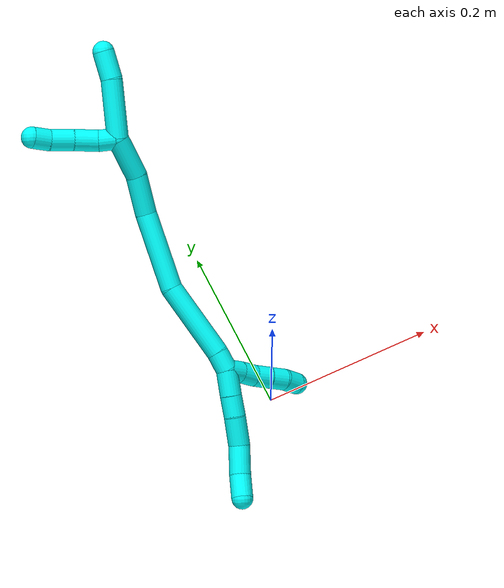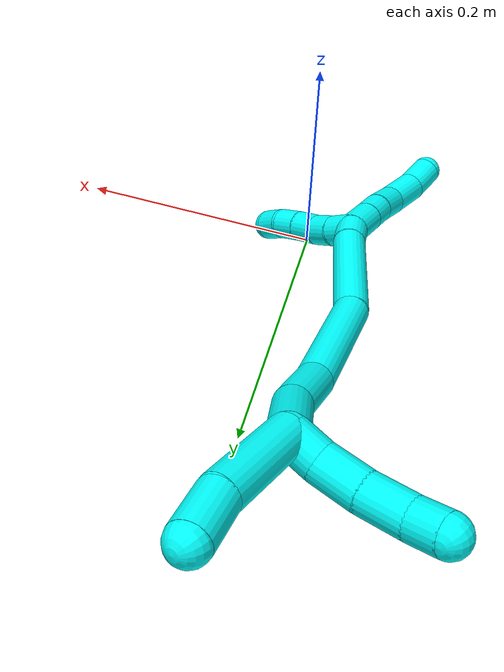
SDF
<sdf version="1.7">
 <world name="default">
  <model name="3">
   <static>0</static>
   <link name="3">
    <collision name="collision-cylinder-e_1_2_8">
     <pose>-0.000328 -0.001591 -0.014697 3.03376 -0.022193 -0.405601</pose>
     <geometry><cylinder><radius>0.0125</radius><length>0.029572</length></cylinder></geometry>
     <surface>
      <friction><ode><mu>1.16</mu><mu2>1.16</mu2><slip1>0</slip1><slip2>0</slip2></ode></friction>
      <contact><ode><kp>1e+06</kp><kd>1</kd><max_vel>0</max_vel><min_depth>0.001</min_depth></ode></contact>
     </surface>
    </collision>
    <visual name="visual-cylinder-e_1_2_8">
     <pose>-0.000328 -0.001591 -0.014697 3.03376 -0.022193 -0.405601</pose>
     <geometry><cylinder><radius>0.0125</radius><length>0.029572</length></cylinder></geometry>
     <material><ambient>0.003922 1 0.996078 1</ambient></material>
    </visual>
    <collision name="collision-cylinder-e_2_8_9">
     <pose>-0.000599 -0.004884 -0.041396 3.00075 0.004739 0.067162</pose>
     <geometry><cylinder><radius>0.0125</radius><length>0.024246</length></cylinder></geometry>
     <surface>
      <friction><ode><mu>1.16</mu><mu2>1.16</mu2><slip1>0</slip1><slip2>0</slip2></ode></friction>
      <contact><ode><kp>1e+06</kp><kd>1</kd><max_vel>0</max_vel><min_depth>0.001</min_depth></ode></contact>
     </surface>
    </collision>
    <visual name="visual-cylinder-e_2_8_9">
     <pose>-0.000599 -0.004884 -0.041396 3.00075 0.004739 0.067162</pose>
     <geometry><cylinder><radius>0.0125</radius><length>0.024246</length></cylinder></geometry>
     <material><ambient>0.003922 1 0.996078 1</ambient></material>
    </visual>
    <collision name="collision-cylinder-e_3_9_10">
     <pose>0.001238 -0.008702 -0.070191 3.01619 0.104759 1.39152</pose>
     <geometry><cylinder><radius>0.0125</radius><length>0.034037</length></cylinder></geometry>
     <surface>
      <friction><ode><mu>1.16</mu><mu2>1.16</mu2><slip1>0</slip1><slip2>0</slip2></ode></friction>
      <contact><ode><kp>1e+06</kp><kd>1</kd><max_vel>0</max_vel><min_depth>0.001</min_depth></ode></contact>
     </surface>
    </collision>
    <visual name="visual-cylinder-e_3_9_10">
     <pose>0.001238 -0.008702 -0.070191 3.01619 0.104759 1.39152</pose>
     <geometry><cylinder><radius>0.0125</radius><length>0.034037</length></cylinder></geometry>
     <material><ambient>0.003922 1 0.996078 1</ambient></material>
    </visual>
    <collision name="collision-cylinder-e_4_10_11">
     <pose>0.000408 -0.010017 -0.104098 -3.09478 -0.151168 2.54194</pose>
     <geometry><cylinder><radius>0.0125</radius><length>0.034661</length></cylinder></geometry>
     <surface>
      <friction><ode><mu>1.16</mu><mu2>1.16</mu2><slip1>0</slip1><slip2>0</slip2></ode></friction>
      <contact><ode><kp>1e+06</kp><kd>1</kd><max_vel>0</max_vel><min_depth>0.001</min_depth></ode></contact>
     </surface>
    </collision>
    <visual name="visual-cylinder-e_4_10_11">
     <pose>0.000408 -0.010017 -0.104098 -3.09478 -0.151168 2.54194</pose>
     <geometry><cylinder><radius>0.0125</radius><length>0.034661</length></cylinder></geometry>
     <material><ambient>0.003922 1 0.996078 1</ambient></material>
    </visual>
    <collision name="collision-cylinder-e_5_11_6">
     <pose>-0.006914 -0.008938 -0.134117 -3.12008 -0.350021 3.02007</pose>
     <geometry><cylinder><radius>0.0125</radius><length>0.027484</length></cylinder></geometry>
     <surface>
      <friction><ode><mu>1.16</mu><mu2>1.16</mu2><slip1>0</slip1><slip2>0</slip2></ode></friction>
      <contact><ode><kp>1e+06</kp><kd>1</kd><max_vel>0</max_vel><min_depth>0.001</min_depth></ode></contact>
     </surface>
    </collision>
    <visual name="visual-cylinder-e_5_11_6">
     <pose>-0.006914 -0.008938 -0.134117 -3.12008 -0.350021 3.02007</pose>
     <geometry><cylinder><radius>0.0125</radius><length>0.027484</length></cylinder></geometry>
     <material><ambient>0.003922 1 0.996078 1</ambient></material>
    </visual>
    <collision name="collision-cylinder-e_1_2_12">
     <pose>0.004784 -0.008608 -0.001735 1.76969 0.498833 0.603371</pose>
     <geometry><cylinder><radius>0.0125</radius><length>0.02</length></cylinder></geometry>
     <surface>
      <friction><ode><mu>1.16</mu><mu2>1.16</mu2><slip1>0</slip1><slip2>0</slip2></ode></friction>
      <contact><ode><kp>1e+06</kp><kd>1</kd><max_vel>0</max_vel><min_depth>0.001</min_depth></ode></contact>
     </surface>
    </collision>
    <visual name="visual-cylinder-e_1_2_12">
     <pose>0.004784 -0.008608 -0.001735 1.76969 0.498833 0.603371</pose>
     <geometry><cylinder><radius>0.0125</radius><length>0.02</length></cylinder></geometry>
     <material><ambient>0.003922 1 0.996078 1</ambient></material>
    </visual>
    <collision name="collision-cylinder-e_2_12_13">
     <pose>0.013558 -0.025966 -0.006215 1.8748 0.410382 0.552344</pose>
     <geometry><cylinder><radius>0.0125</radius><length>0.02</length></cylinder></geometry>
     <surface>
      <friction><ode><mu>1.16</mu><mu2>1.16</mu2><slip1>0</slip1><slip2>0</slip2></ode></friction>
      <contact><ode><kp>1e+06</kp><kd>1</kd><max_vel>0</max_vel><min_depth>0.001</min_depth></ode></contact>
     </surface>
    </collision>
    <visual name="visual-cylinder-e_2_12_13">
     <pose>0.013558 -0.025966 -0.006215 1.8748 0.410382 0.552344</pose>
     <geometry><cylinder><radius>0.0125</radius><length>0.02</length></cylinder></geometry>
     <material><ambient>0.003922 1 0.996078 1</ambient></material>
    </visual>
    <collision name="collision-cylinder-e_3_13_14">
     <pose>0.020136 -0.044205 -0.010758 1.75803 0.26186 0.315308</pose>
     <geometry><cylinder><radius>0.0125</radius><length>0.02</length></cylinder></geometry>
     <surface>
      <friction><ode><mu>1.16</mu><mu2>1.16</mu2><slip1>0</slip1><slip2>0</slip2></ode></friction>
      <contact><ode><kp>1e+06</kp><kd>1</kd><max_vel>0</max_vel><min_depth>0.001</min_depth></ode></contact>
     </surface>
    </collision>
    <visual name="visual-cylinder-e_3_13_14">
     <pose>0.020136 -0.044205 -0.010758 1.75803 0.26186 0.315308</pose>
     <geometry><cylinder><radius>0.0125</radius><length>0.02</length></cylinder></geometry>
     <material><ambient>0.003922 1 0.996078 1</ambient></material>
    </visual>
    <collision name="collision-cylinder-e_4_14_15">
     <pose>0.02587 -0.063025 -0.014308 1.7565 0.319944 0.384178</pose>
     <geometry><cylinder><radius>0.0125</radius><length>0.02</length></cylinder></geometry>
     <surface>
      <friction><ode><mu>1.16</mu><mu2>1.16</mu2><slip1>0</slip1><slip2>0</slip2></ode></friction>
      <contact><ode><kp>1e+06</kp><kd>1</kd><max_vel>0</max_vel><min_depth>0.001</min_depth></ode></contact>
     </surface>
    </collision>
    <visual name="visual-cylinder-e_4_14_15">
     <pose>0.02587 -0.063025 -0.014308 1.7565 0.319944 0.384178</pose>
     <geometry><cylinder><radius>0.0125</radius><length>0.02</length></cylinder></geometry>
     <material><ambient>0.003922 1 0.996078 1</ambient></material>
    </visual>
    <collision name="collision-cylinder-e_5_15_5">
     <pose>0.03385 -0.080577 -0.019062 1.9207 0.504644 0.706174</pose>
     <geometry><cylinder><radius>0.0125</radius><length>0.02</length></cylinder></geometry>
     <surface>
      <friction><ode><mu>1.16</mu><mu2>1.16</mu2><slip1>0</slip1><slip2>0</slip2></ode></friction>
      <contact><ode><kp>1e+06</kp><kd>1</kd><max_vel>0</max_vel><min_depth>0.001</min_depth></ode></contact>
     </surface>
    </collision>
    <visual name="visual-cylinder-e_5_15_5">
     <pose>0.03385 -0.080577 -0.019062 1.9207 0.504644 0.706174</pose>
     <geometry><cylinder><radius>0.0125</radius><length>0.02</length></cylinder></geometry>
     <material><ambient>0.003922 1 0.996078 1</ambient></material>
    </visual>
    <collision name="collision-cylinder-e_1_2_16">
     <pose>0.00069 0.00483 0.010362 -0.436166 0.060258 -0.013358</pose>
     <geometry><cylinder><radius>0.0125</radius><length>0.022906</length></cylinder></geometry>
     <surface>
      <friction><ode><mu>1.16</mu><mu2>1.16</mu2><slip1>0</slip1><slip2>0</slip2></ode></friction>
      <contact><ode><kp>1e+06</kp><kd>1</kd><max_vel>0</max_vel><min_depth>0.001</min_depth></ode></contact>
     </surface>
    </collision>
    <visual name="visual-cylinder-e_1_2_16">
     <pose>0.00069 0.00483 0.010362 -0.436166 0.060258 -0.013358</pose>
     <geometry><cylinder><radius>0.0125</radius><length>0.022906</length></cylinder></geometry>
     <material><ambient>0.003922 1 0.996078 1</ambient></material>
    </visual>
    <collision name="collision-cylinder-e_2_16_17">
     <pose>0.006194 0.033739 0.058672 -0.565426 0.106719 -0.031028</pose>
     <geometry><cylinder><radius>0.0125</radius><length>0.090399</length></cylinder></geometry>
     <surface>
      <friction><ode><mu>1.16</mu><mu2>1.16</mu2><slip1>0</slip1><slip2>0</slip2></ode></friction>
      <contact><ode><kp>1e+06</kp><kd>1</kd><max_vel>0</max_vel><min_depth>0.001</min_depth></ode></contact>
     </surface>
    </collision>
    <visual name="visual-cylinder-e_2_16_17">
     <pose>0.006194 0.033739 0.058672 -0.565426 0.106719 -0.031028</pose>
     <geometry><cylinder><radius>0.0125</radius><length>0.090399</length></cylinder></geometry>
     <material><ambient>0.003922 1 0.996078 1</ambient></material>
    </visual>
    <collision name="collision-cylinder-e_3_17_18">
     <pose>0.013304 0.070129 0.140113 -0.275829 0.050734 -0.007043</pose>
     <geometry><cylinder><radius>0.0125</radius><length>0.090522</length></cylinder></geometry>
     <surface>
      <friction><ode><mu>1.16</mu><mu2>1.16</mu2><slip1>0</slip1><slip2>0</slip2></ode></friction>
      <contact><ode><kp>1e+06</kp><kd>1</kd><max_vel>0</max_vel><min_depth>0.001</min_depth></ode></contact>
     </surface>
    </collision>
    <visual name="visual-cylinder-e_3_17_18">
     <pose>0.013304 0.070129 0.140113 -0.275829 0.050734 -0.007043</pose>
     <geometry><cylinder><radius>0.0125</radius><length>0.090522</length></cylinder></geometry>
     <material><ambient>0.003922 1 0.996078 1</ambient></material>
    </visual>
    <collision name="collision-cylinder-e_4_18_19">
     <pose>0.010672 0.087769 0.205791 -0.235787 -0.212677 0.025284</pose>
     <geometry><cylinder><radius>0.0125</radius><length>0.046682</length></cylinder></geometry>
     <surface>
      <friction><ode><mu>1.16</mu><mu2>1.16</mu2><slip1>0</slip1><slip2>0</slip2></ode></friction>
      <contact><ode><kp>1e+06</kp><kd>1</kd><max_vel>0</max_vel><min_depth>0.001</min_depth></ode></contact>
     </surface>
    </collision>
    <visual name="visual-cylinder-e_4_18_19">
     <pose>0.010672 0.087769 0.205791 -0.235787 -0.212677 0.025284</pose>
     <geometry><cylinder><radius>0.0125</radius><length>0.046682</length></cylinder></geometry>
     <material><ambient>0.003922 1 0.996078 1</ambient></material>
    </visual>
    <collision name="collision-cylinder-e_5_19_1">
     <pose>-0.001731 0.103915 0.248938 -0.476328 -0.306938 0.075071</pose>
     <geometry><cylinder><radius>0.0125</radius><length>0.04949</length></cylinder></geometry>
     <surface>
      <friction><ode><mu>1.16</mu><mu2>1.16</mu2><slip1>0</slip1><slip2>0</slip2></ode></friction>
      <contact><ode><kp>1e+06</kp><kd>1</kd><max_vel>0</max_vel><min_depth>0.001</min_depth></ode></contact>
     </surface>
    </collision>
    <visual name="visual-cylinder-e_5_19_1">
     <pose>-0.001731 0.103915 0.248938 -0.476328 -0.306938 0.075071</pose>
     <geometry><cylinder><radius>0.0125</radius><length>0.04949</length></cylinder></geometry>
     <material><ambient>0.003922 1 0.996078 1</ambient></material>
    </visual>
    <collision name="collision-cylinder-e_1_1_20">
     <pose>-0.010514 0.116784 0.303597 -0.060875 -0.038689 0.001178</pose>
     <geometry><cylinder><radius>0.0125</radius><length>0.067568</length></cylinder></geometry>
     <surface>
      <friction><ode><mu>1.16</mu><mu2>1.16</mu2><slip1>0</slip1><slip2>0</slip2></ode></friction>
      <contact><ode><kp>1e+06</kp><kd>1</kd><max_vel>0</max_vel><min_depth>0.001</min_depth></ode></contact>
     </surface>
    </collision>
    <visual name="visual-cylinder-e_1_1_20">
     <pose>-0.010514 0.116784 0.303597 -0.060875 -0.038689 0.001178</pose>
     <geometry><cylinder><radius>0.0125</radius><length>0.067568</length></cylinder></geometry>
     <material><ambient>0.003922 1 0.996078 1</ambient></material>
    </visual>
    <collision name="collision-cylinder-e_2_20_4">
     <pose>-0.010802 0.122585 0.353038 -0.233628 0.062891 -0.007383</pose>
     <geometry><cylinder><radius>0.0125</radius><length>0.032432</length></cylinder></geometry>
     <surface>
      <friction><ode><mu>1.16</mu><mu2>1.16</mu2><slip1>0</slip1><slip2>0</slip2></ode></friction>
      <contact><ode><kp>1e+06</kp><kd>1</kd><max_vel>0</max_vel><min_depth>0.001</min_depth></ode></contact>
     </surface>
    </collision>
    <visual name="visual-cylinder-e_2_20_4">
     <pose>-0.010802 0.122585 0.353038 -0.233628 0.062891 -0.007383</pose>
     <geometry><cylinder><radius>0.0125</radius><length>0.032432</length></cylinder></geometry>
     <material><ambient>0.003922 1 0.996078 1</ambient></material>
    </visual>
    <collision name="collision-cylinder-e_1_1_21">
     <pose>-0.005521 0.125026 0.269212 -1.63766 0.343163 -0.366399</pose>
     <geometry><cylinder><radius>0.0125</radius><length>0.021915</length></cylinder></geometry>
     <surface>
      <friction><ode><mu>1.16</mu><mu2>1.16</mu2><slip1>0</slip1><slip2>0</slip2></ode></friction>
      <contact><ode><kp>1e+06</kp><kd>1</kd><max_vel>0</max_vel><min_depth>0.001</min_depth></ode></contact>
     </surface>
    </collision>
    <visual name="visual-cylinder-e_1_1_21">
     <pose>-0.005521 0.125026 0.269212 -1.63766 0.343163 -0.366399</pose>
     <geometry><cylinder><radius>0.0125</radius><length>0.021915</length></cylinder></geometry>
     <material><ambient>0.003922 1 0.996078 1</ambient></material>
    </visual>
    <collision name="collision-cylinder-e_2_21_22">
     <pose>-0.001311 0.149764 0.269664 -1.49193 0.036092 -0.033353</pose>
     <geometry><cylinder><radius>0.0125</radius><length>0.028993</length></cylinder></geometry>
     <surface>
      <friction><ode><mu>1.16</mu><mu2>1.16</mu2><slip1>0</slip1><slip2>0</slip2></ode></friction>
      <contact><ode><kp>1e+06</kp><kd>1</kd><max_vel>0</max_vel><min_depth>0.001</min_depth></ode></contact>
     </surface>
    </collision>
    <visual name="visual-cylinder-e_2_21_22">
     <pose>-0.001311 0.149764 0.269664 -1.49193 0.036092 -0.033353</pose>
     <geometry><cylinder><radius>0.0125</radius><length>0.028993</length></cylinder></geometry>
     <material><ambient>0.003922 1 0.996078 1</ambient></material>
    </visual>
    <collision name="collision-cylinder-e_3_22_23">
     <pose>-0.001613 0.178287 0.271286 -1.53664 -0.058519 0.056555</pose>
     <geometry><cylinder><radius>0.0125</radius><length>0.028226</length></cylinder></geometry>
     <surface>
      <friction><ode><mu>1.16</mu><mu2>1.16</mu2><slip1>0</slip1><slip2>0</slip2></ode></friction>
      <contact><ode><kp>1e+06</kp><kd>1</kd><max_vel>0</max_vel><min_depth>0.001</min_depth></ode></contact>
     </surface>
    </collision>
    <visual name="visual-cylinder-e_3_22_23">
     <pose>-0.001613 0.178287 0.271286 -1.53664 -0.058519 0.056555</pose>
     <geometry><cylinder><radius>0.0125</radius><length>0.028226</length></cylinder></geometry>
     <material><ambient>0.003922 1 0.996078 1</ambient></material>
    </visual>
    <collision name="collision-cylinder-e_4_23_3">
     <pose>-0.005043 0.202314 0.273535 -1.39493 -0.252308 0.211759</pose>
     <geometry><cylinder><radius>0.0125</radius><length>0.020865</length></cylinder></geometry>
     <surface>
      <friction><ode><mu>1.16</mu><mu2>1.16</mu2><slip1>0</slip1><slip2>0</slip2></ode></friction>
      <contact><ode><kp>1e+06</kp><kd>1</kd><max_vel>0</max_vel><min_depth>0.001</min_depth></ode></contact>
     </surface>
    </collision>
    <visual name="visual-cylinder-e_4_23_3">
     <pose>-0.005043 0.202314 0.273535 -1.39493 -0.252308 0.211759</pose>
     <geometry><cylinder><radius>0.0125</radius><length>0.020865</length></cylinder></geometry>
     <material><ambient>0.003922 1 0.996078 1</ambient></material>
    </visual>
    <collision name="collision-sphere-3">
     <pose>-0.007647 0.212261 0.275302 0 -0 0</pose>
     <geometry><sphere><radius>0.0125</radius></sphere></geometry>
     <surface>
      <friction><ode><mu>1.16</mu><mu2>1.16</mu2><slip1>0</slip1><slip2>0</slip2></ode></friction>
      <contact><ode><kp>1e+06</kp><kd>1</kd><max_vel>0</max_vel><min_depth>0.001</min_depth></ode></contact>
     </surface>
    </collision>
    <visual name="visual-sphere-3">
     <pose>-0.007647 0.212261 0.275302 0 -0 0</pose>
     <geometry><sphere><radius>0.0125</radius></sphere></geometry>
     <material><ambient>0.003922 1 0.996078 1</ambient></material>
    </visual>
    <collision name="collision-sphere-23">
     <pose>-0.002439 0.192368 0.271767 0 -0 0</pose>
     <geometry><sphere><radius>0.0125</radius></sphere></geometry>
     <surface>
      <friction><ode><mu>1.16</mu><mu2>1.16</mu2><slip1>0</slip1><slip2>0</slip2></ode></friction>
      <contact><ode><kp>1e+06</kp><kd>1</kd><max_vel>0</max_vel><min_depth>0.001</min_depth></ode></contact>
     </surface>
    </collision>
    <visual name="visual-sphere-23">
     <pose>-0.002439 0.192368 0.271767 0 -0 0</pose>
     <geometry><sphere><radius>0.0125</radius></sphere></geometry>
     <material><ambient>0.003922 1 0.996078 1</ambient></material>
    </visual>
    <collision name="collision-sphere-22">
     <pose>-0.000788 0.164206 0.270805 0 -0 0</pose>
     <geometry><sphere><radius>0.0125</radius></sphere></geometry>
     <surface>
      <friction><ode><mu>1.16</mu><mu2>1.16</mu2><slip1>0</slip1><slip2>0</slip2></ode></friction>
      <contact><ode><kp>1e+06</kp><kd>1</kd><max_vel>0</max_vel><min_depth>0.001</min_depth></ode></contact>
     </surface>
    </collision>
    <visual name="visual-sphere-22">
     <pose>-0.000788 0.164206 0.270805 0 -0 0</pose>
     <geometry><sphere><radius>0.0125</radius></sphere></geometry>
     <material><ambient>0.003922 1 0.996078 1</ambient></material>
    </visual>
    <collision name="collision-sphere-21">
     <pose>-0.001834 0.135322 0.268522 0 -0 0</pose>
     <geometry><sphere><radius>0.0125</radius></sphere></geometry>
     <surface>
      <friction><ode><mu>1.16</mu><mu2>1.16</mu2><slip1>0</slip1><slip2>0</slip2></ode></friction>
      <contact><ode><kp>1e+06</kp><kd>1</kd><max_vel>0</max_vel><min_depth>0.001</min_depth></ode></contact>
     </surface>
    </collision>
    <visual name="visual-sphere-21">
     <pose>-0.001834 0.135322 0.268522 0 -0 0</pose>
     <geometry><sphere><radius>0.0125</radius></sphere></geometry>
     <material><ambient>0.003922 1 0.996078 1</ambient></material>
    </visual>
    <collision name="collision-sphere-4">
     <pose>-0.009783 0.126332 0.368782 0 -0 0</pose>
     <geometry><sphere><radius>0.0125</radius></sphere></geometry>
     <surface>
      <friction><ode><mu>1.16</mu><mu2>1.16</mu2><slip1>0</slip1><slip2>0</slip2></ode></friction>
      <contact><ode><kp>1e+06</kp><kd>1</kd><max_vel>0</max_vel><min_depth>0.001</min_depth></ode></contact>
     </surface>
    </collision>
    <visual name="visual-sphere-4">
     <pose>-0.009783 0.126332 0.368782 0 -0 0</pose>
     <geometry><sphere><radius>0.0125</radius></sphere></geometry>
     <material><ambient>0.003922 1 0.996078 1</ambient></material>
    </visual>
    <collision name="collision-sphere-20">
     <pose>-0.011821 0.118838 0.337293 0 -0 0</pose>
     <geometry><sphere><radius>0.0125</radius></sphere></geometry>
     <surface>
      <friction><ode><mu>1.16</mu><mu2>1.16</mu2><slip1>0</slip1><slip2>0</slip2></ode></friction>
      <contact><ode><kp>1e+06</kp><kd>1</kd><max_vel>0</max_vel><min_depth>0.001</min_depth></ode></contact>
     </surface>
    </collision>
    <visual name="visual-sphere-20">
     <pose>-0.011821 0.118838 0.337293 0 -0 0</pose>
     <geometry><sphere><radius>0.0125</radius></sphere></geometry>
     <material><ambient>0.003922 1 0.996078 1</ambient></material>
    </visual>
    <collision name="collision-sphere-6">
     <pose>-0.011627 -0.00866 -0.147023 0 -0 0</pose>
     <geometry><sphere><radius>0.0125</radius></sphere></geometry>
     <surface>
      <friction><ode><mu>1.16</mu><mu2>1.16</mu2><slip1>0</slip1><slip2>0</slip2></ode></friction>
      <contact><ode><kp>1e+06</kp><kd>1</kd><max_vel>0</max_vel><min_depth>0.001</min_depth></ode></contact>
     </surface>
    </collision>
    <visual name="visual-sphere-6">
     <pose>-0.011627 -0.00866 -0.147023 0 -0 0</pose>
     <geometry><sphere><radius>0.0125</radius></sphere></geometry>
     <material><ambient>0.003922 1 0.996078 1</ambient></material>
    </visual>
    <collision name="collision-sphere-11">
     <pose>-0.002202 -0.009216 -0.121212 0 -0 0</pose>
     <geometry><sphere><radius>0.0125</radius></sphere></geometry>
     <surface>
      <friction><ode><mu>1.16</mu><mu2>1.16</mu2><slip1>0</slip1><slip2>0</slip2></ode></friction>
      <contact><ode><kp>1e+06</kp><kd>1</kd><max_vel>0</max_vel><min_depth>0.001</min_depth></ode></contact>
     </surface>
    </collision>
    <visual name="visual-sphere-11">
     <pose>-0.002202 -0.009216 -0.121212 0 -0 0</pose>
     <geometry><sphere><radius>0.0125</radius></sphere></geometry>
     <material><ambient>0.003922 1 0.996078 1</ambient></material>
    </visual>
    <collision name="collision-sphere-10">
     <pose>0.003018 -0.010819 -0.086984 0 -0 0</pose>
     <geometry><sphere><radius>0.0125</radius></sphere></geometry>
     <surface>
      <friction><ode><mu>1.16</mu><mu2>1.16</mu2><slip1>0</slip1><slip2>0</slip2></ode></friction>
      <contact><ode><kp>1e+06</kp><kd>1</kd><max_vel>0</max_vel><min_depth>0.001</min_depth></ode></contact>
     </surface>
    </collision>
    <visual name="visual-sphere-10">
     <pose>0.003018 -0.010819 -0.086984 0 -0 0</pose>
     <geometry><sphere><radius>0.0125</radius></sphere></geometry>
     <material><ambient>0.003922 1 0.996078 1</ambient></material>
    </visual>
    <collision name="collision-sphere-9">
     <pose>-0.000541 -0.006585 -0.053399 0 -0 0</pose>
     <geometry><sphere><radius>0.0125</radius></sphere></geometry>
     <surface>
      <friction><ode><mu>1.16</mu><mu2>1.16</mu2><slip1>0</slip1><slip2>0</slip2></ode></friction>
      <contact><ode><kp>1e+06</kp><kd>1</kd><max_vel>0</max_vel><min_depth>0.001</min_depth></ode></contact>
     </surface>
    </collision>
    <visual name="visual-sphere-9">
     <pose>-0.000541 -0.006585 -0.053399 0 -0 0</pose>
     <geometry><sphere><radius>0.0125</radius></sphere></geometry>
     <material><ambient>0.003922 1 0.996078 1</ambient></material>
    </visual>
    <collision name="collision-sphere-2">
     <geometry><sphere><radius>0.0125</radius></sphere></geometry>
     <surface>
      <friction><ode><mu>1.16</mu><mu2>1.16</mu2><slip1>0</slip1><slip2>0</slip2></ode></friction>
      <contact><ode><kp>1e+06</kp><kd>1</kd><max_vel>0</max_vel><min_depth>0.001</min_depth></ode></contact>
     </surface>
    </collision>
    <visual name="visual-sphere-2">
     <geometry><sphere><radius>0.0125</radius></sphere></geometry>
     <material><ambient>0.003922 1 0.996078 1</ambient></material>
    </visual>
    <collision name="collision-sphere-19">
     <pose>0.005745 0.093099 0.227975 0 -0 0</pose>
     <geometry><sphere><radius>0.0125</radius></sphere></geometry>
     <surface>
      <friction><ode><mu>1.16</mu><mu2>1.16</mu2><slip1>0</slip1><slip2>0</slip2></ode></friction>
      <contact><ode><kp>1e+06</kp><kd>1</kd><max_vel>0</max_vel><min_depth>0.001</min_depth></ode></contact>
     </surface>
    </collision>
    <visual name="visual-sphere-19">
     <pose>0.005745 0.093099 0.227975 0 -0 0</pose>
     <geometry><sphere><radius>0.0125</radius></sphere></geometry>
     <material><ambient>0.003922 1 0.996078 1</ambient></material>
    </visual>
    <collision name="collision-sphere-8">
     <pose>-0.000656 -0.003182 -0.029393 0 -0 0</pose>
     <geometry><sphere><radius>0.0125</radius></sphere></geometry>
     <surface>
      <friction><ode><mu>1.16</mu><mu2>1.16</mu2><slip1>0</slip1><slip2>0</slip2></ode></friction>
      <contact><ode><kp>1e+06</kp><kd>1</kd><max_vel>0</max_vel><min_depth>0.001</min_depth></ode></contact>
     </surface>
    </collision>
    <visual name="visual-sphere-8">
     <pose>-0.000656 -0.003182 -0.029393 0 -0 0</pose>
     <geometry><sphere><radius>0.0125</radius></sphere></geometry>
     <material><ambient>0.003922 1 0.996078 1</ambient></material>
    </visual>
    <collision name="collision-sphere-12">
     <pose>0.009568 -0.017217 -0.00347 0 -0 0</pose>
     <geometry><sphere><radius>0.0125</radius></sphere></geometry>
     <surface>
      <friction><ode><mu>1.16</mu><mu2>1.16</mu2><slip1>0</slip1><slip2>0</slip2></ode></friction>
      <contact><ode><kp>1e+06</kp><kd>1</kd><max_vel>0</max_vel><min_depth>0.001</min_depth></ode></contact>
     </surface>
    </collision>
    <visual name="visual-sphere-12">
     <pose>0.009568 -0.017217 -0.00347 0 -0 0</pose>
     <geometry><sphere><radius>0.0125</radius></sphere></geometry>
     <material><ambient>0.003922 1 0.996078 1</ambient></material>
    </visual>
    <collision name="collision-sphere-13">
     <pose>0.017547 -0.034715 -0.00896 0 -0 0</pose>
     <geometry><sphere><radius>0.0125</radius></sphere></geometry>
     <surface>
      <friction><ode><mu>1.16</mu><mu2>1.16</mu2><slip1>0</slip1><slip2>0</slip2></ode></friction>
      <contact><ode><kp>1e+06</kp><kd>1</kd><max_vel>0</max_vel><min_depth>0.001</min_depth></ode></contact>
     </surface>
    </collision>
    <visual name="visual-sphere-13">
     <pose>0.017547 -0.034715 -0.00896 0 -0 0</pose>
     <geometry><sphere><radius>0.0125</radius></sphere></geometry>
     <material><ambient>0.003922 1 0.996078 1</ambient></material>
    </visual>
    <collision name="collision-sphere-14">
     <pose>0.022725 -0.053696 -0.012556 0 -0 0</pose>
     <geometry><sphere><radius>0.0125</radius></sphere></geometry>
     <surface>
      <friction><ode><mu>1.16</mu><mu2>1.16</mu2><slip1>0</slip1><slip2>0</slip2></ode></friction>
      <contact><ode><kp>1e+06</kp><kd>1</kd><max_vel>0</max_vel><min_depth>0.001</min_depth></ode></contact>
     </surface>
    </collision>
    <visual name="visual-sphere-14">
     <pose>0.022725 -0.053696 -0.012556 0 -0 0</pose>
     <geometry><sphere><radius>0.0125</radius></sphere></geometry>
     <material><ambient>0.003922 1 0.996078 1</ambient></material>
    </visual>
    <collision name="collision-sphere-15">
     <pose>0.029015 -0.072354 -0.016061 0 -0 0</pose>
     <geometry><sphere><radius>0.0125</radius></sphere></geometry>
     <surface>
      <friction><ode><mu>1.16</mu><mu2>1.16</mu2><slip1>0</slip1><slip2>0</slip2></ode></friction>
      <contact><ode><kp>1e+06</kp><kd>1</kd><max_vel>0</max_vel><min_depth>0.001</min_depth></ode></contact>
     </surface>
    </collision>
    <visual name="visual-sphere-15">
     <pose>0.029015 -0.072354 -0.016061 0 -0 0</pose>
     <geometry><sphere><radius>0.0125</radius></sphere></geometry>
     <material><ambient>0.003922 1 0.996078 1</ambient></material>
    </visual>
    <collision name="collision-sphere-5">
     <pose>0.038685 -0.0888 -0.022063 0 -0 0</pose>
     <geometry><sphere><radius>0.0125</radius></sphere></geometry>
     <surface>
      <friction><ode><mu>1.16</mu><mu2>1.16</mu2><slip1>0</slip1><slip2>0</slip2></ode></friction>
      <contact><ode><kp>1e+06</kp><kd>1</kd><max_vel>0</max_vel><min_depth>0.001</min_depth></ode></contact>
     </surface>
    </collision>
    <visual name="visual-sphere-5">
     <pose>0.038685 -0.0888 -0.022063 0 -0 0</pose>
     <geometry><sphere><radius>0.0125</radius></sphere></geometry>
     <material><ambient>0.003922 1 0.996078 1</ambient></material>
    </visual>
    <collision name="collision-sphere-16">
     <pose>0.001379 0.00966 0.020724 0 -0 0</pose>
     <geometry><sphere><radius>0.0125</radius></sphere></geometry>
     <surface>
      <friction><ode><mu>1.16</mu><mu2>1.16</mu2><slip1>0</slip1><slip2>0</slip2></ode></friction>
      <contact><ode><kp>1e+06</kp><kd>1</kd><max_vel>0</max_vel><min_depth>0.001</min_depth></ode></contact>
     </surface>
    </collision>
    <visual name="visual-sphere-16">
     <pose>0.001379 0.00966 0.020724 0 -0 0</pose>
     <geometry><sphere><radius>0.0125</radius></sphere></geometry>
     <material><ambient>0.003922 1 0.996078 1</ambient></material>
    </visual>
    <collision name="collision-sphere-17">
     <pose>0.011008 0.057818 0.096619 0 -0 0</pose>
     <geometry><sphere><radius>0.0125</radius></sphere></geometry>
     <surface>
      <friction><ode><mu>1.16</mu><mu2>1.16</mu2><slip1>0</slip1><slip2>0</slip2></ode></friction>
      <contact><ode><kp>1e+06</kp><kd>1</kd><max_vel>0</max_vel><min_depth>0.001</min_depth></ode></contact>
     </surface>
    </collision>
    <visual name="visual-sphere-17">
     <pose>0.011008 0.057818 0.096619 0 -0 0</pose>
     <geometry><sphere><radius>0.0125</radius></sphere></geometry>
     <material><ambient>0.003922 1 0.996078 1</ambient></material>
    </visual>
    <collision name="collision-sphere-18">
     <pose>0.015599 0.082439 0.183607 0 -0 0</pose>
     <geometry><sphere><radius>0.0125</radius></sphere></geometry>
     <surface>
      <friction><ode><mu>1.16</mu><mu2>1.16</mu2><slip1>0</slip1><slip2>0</slip2></ode></friction>
      <contact><ode><kp>1e+06</kp><kd>1</kd><max_vel>0</max_vel><min_depth>0.001</min_depth></ode></contact>
     </surface>
    </collision>
    <visual name="visual-sphere-18">
     <pose>0.015599 0.082439 0.183607 0 -0 0</pose>
     <geometry><sphere><radius>0.0125</radius></sphere></geometry>
     <material><ambient>0.003922 1 0.996078 1</ambient></material>
    </visual>
    <collision name="collision-sphere-1">
     <pose>-0.009208 0.114731 0.269901 0 -0 0</pose>
     <geometry><sphere><radius>0.0125</radius></sphere></geometry>
     <surface>
      <friction><ode><mu>1.16</mu><mu2>1.16</mu2><slip1>0</slip1><slip2>0</slip2></ode></friction>
      <contact><ode><kp>1e+06</kp><kd>1</kd><max_vel>0</max_vel><min_depth>0.001</min_depth></ode></contact>
     </surface>
    </collision>
    <visual name="visual-sphere-1">
     <pose>-0.009208 0.114731 0.269901 0 -0 0</pose>
     <geometry><sphere><radius>0.0125</radius></sphere></geometry>
     <material><ambient>0.003922 1 0.996078 1</ambient></material>
    </visual>
    <inertial>
     <pose>0.003504 0.055265 0.116046 0 -0 0</pose>
     <mass>0.75</mass>
     <inertia>
      <ixx>0.00021</ixx>
      <ixy>0</ixy>
      <ixz>0</ixz>
      <iyy>0.000192</iyy>
      <iyz>0</iyz>
      <izz>-5.5e-05</izz>
     </inertia>
    </inertial>
   </link>
   <pose>-0.042336 0.029516 0.068748 0.325679 1.08413 1.54044</pose>
  </model>
 </world>
</sdf>
